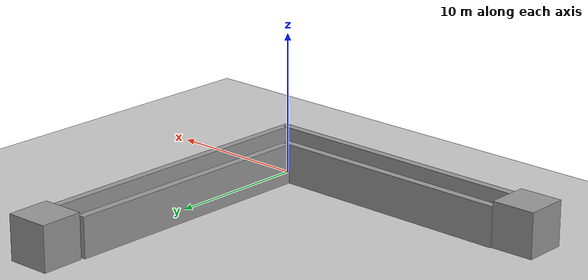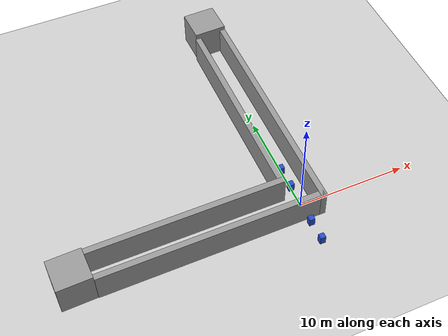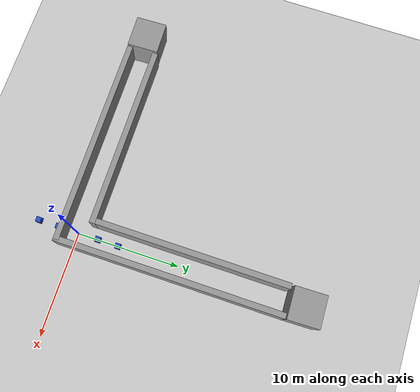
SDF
<sdf version="1.6">
 <world name="default">
  <include><uri>model://sun</uri></include>
  <include><uri>model://ground_plane</uri></include>
  <physics name="default_physics" default="0" type="ode">
   <max_step_size>0.01</max_step_size>
   <real_time_factor>1</real_time_factor>
   <real_time_update_rate>100</real_time_update_rate>
  </physics>
  <model name="my_obstacle_0">
   <pose>0 2 0.2 0 -0 0</pose>
   <link name="s_link">
    <inertial>
     <mass>1</mass>
     <inertia><ixx>1</ixx><ixy>0</ixy><ixz>0</ixz><iyy>1</iyy><iyz>0</iyz><izz>1</izz></inertia>
    </inertial>
    <collision name="collision"><geometry><box><size>.5 .5 1.2</size></box></geometry></collision>
    <visual name="visual">
     <geometry><box><size>.5 .5 1.2</size></box></geometry>
     <material>
      <script><name>Gazebo/Blue</name><uri>file://media/materials/scripts/gazebo.material</uri></script>
     </material>
    </visual>
    <kinematic>1</kinematic>
   </link>
  </model>
  <model name="my_obstacle_1">
   <pose>0 4 0.2 0 -0 0</pose>
   <link name="s_link">
    <inertial>
     <mass>1</mass>
     <inertia><ixx>1</ixx><ixy>0</ixy><ixz>0</ixz><iyy>1</iyy><iyz>0</iyz><izz>1</izz></inertia>
    </inertial>
    <collision name="collision"><geometry><box><size>.5 .5 1.2</size></box></geometry></collision>
    <visual name="visual">
     <geometry><box><size>.5 .5 1.2</size></box></geometry>
     <material>
      <script><name>Gazebo/Blue</name><uri>file://media/materials/scripts/gazebo.material</uri></script>
     </material>
    </visual>
    <kinematic>1</kinematic>
   </link>
  </model>
  <model name="my_obstacle_2">
   <pose>0 -2 0.2 0 -0 0</pose>
   <link name="s_link">
    <inertial>
     <mass>1</mass>
     <inertia><ixx>1</ixx><ixy>0</ixy><ixz>0</ixz><iyy>1</iyy><iyz>0</iyz><izz>1</izz></inertia>
    </inertial>
    <collision name="collision"><geometry><box><size>.5 .5 1.2</size></box></geometry></collision>
    <visual name="visual">
     <geometry><box><size>.5 .5 1.2</size></box></geometry>
     <material>
      <script><name>Gazebo/Blue</name><uri>file://media/materials/scripts/gazebo.material</uri></script>
     </material>
    </visual>
    <kinematic>1</kinematic>
   </link>
  </model>
  <model name="my_obstacle_3">
   <pose>0 -4 0.2 0 -0 0</pose>
   <link name="s_link">
    <inertial>
     <mass>1</mass>
     <inertia><ixx>1</ixx><ixy>0</ixy><ixz>0</ixz><iyy>1</iyy><iyz>0</iyz><izz>1</izz></inertia>
    </inertial>
    <collision name="collision"><geometry><box><size>.5 .5 1.2</size></box></geometry></collision>
    <visual name="visual">
     <geometry><box><size>.5 .5 1.2</size></box></geometry>
     <material>
      <script><name>Gazebo/Blue</name><uri>file://media/materials/scripts/gazebo.material</uri></script>
     </material>
    </visual>
    <kinematic>1</kinematic>
   </link>
  </model>
  <model name="grey_wall_2">
   <link name="link">
    <pose>-3.36101 1.45596 1.4 0 -0 0</pose>
    <inertial>
     <inertia><ixx>0</ixx><ixy>0</ixy><ixz>0</ixz><iyy>0</iyy><iyz>0</iyz><izz>0</izz></inertia>
     <mass>0</mass>
    </inertial>
    <visual name="visual">
     <cast_shadows>0</cast_shadows>
     <geometry><box><size>18.6506 0.563339 2.8</size></box></geometry>
     <material>
      <script>
       <uri>model://grey_wall/materials/scripts</uri>
       <uri>model://grey_wall/materials/textures</uri>
       <name>vrc/grey_wall</name>
      </script>
      <shader type="pixel"/>
      <ambient>1 1 1 1</ambient>
      <diffuse>1 1 1 1</diffuse>
      <specular>0 0 0 1</specular>
      <emissive>0 0 0 1</emissive>
     </material>
    </visual>
    <collision name="collision">
     <geometry><box><size>18.6506 0.563339 2.8</size></box></geometry>
     <surface>
      <friction>
       <ode><mu>1</mu><mu2>1</mu2><fdir1>0 0 0</fdir1><slip1>0</slip1><slip2>0</slip2></ode>
       <torsional>
        <coefficient>1</coefficient>
        <patch_radius>0</patch_radius>
        <surface_radius>0</surface_radius>
        <use_patch_radius>1</use_patch_radius>
        <ode><slip>0</slip></ode>
       </torsional>
      </friction>
      <bounce><restitution_coefficient>0</restitution_coefficient><threshold>1e+06</threshold></bounce>
      <contact>
       <collide_without_contact>0</collide_without_contact>
       <collide_without_contact_bitmask>1</collide_without_contact_bitmask>
       <collide_bitmask>1</collide_bitmask>
       <ode>
        <soft_cfm>0</soft_cfm>
        <soft_erp>0.2</soft_erp>
        <kp>1e+13</kp>
        <kd>1</kd>
        <max_vel>0.01</max_vel>
        <min_depth>0</min_depth>
       </ode>
       <bullet>
        <split_impulse>1</split_impulse>
        <split_impulse_penetration_threshold>-0.01</split_impulse_penetration_threshold>
        <soft_cfm>0</soft_cfm>
        <soft_erp>0.2</soft_erp>
        <kp>1e+13</kp>
        <kd>1</kd>
       </bullet>
      </contact>
     </surface>
    </collision>
   </link>
   <static>1</static>
   <pose>-2.77782 7.57224 0 0 0 -1.57152</pose>
  </model>
  <model name="grey_wall_3">
   <link name="link">
    <pose>-2.87522 -0.556395 1.4 0 -0 0</pose>
    <inertial>
     <inertia><ixx>0</ixx><ixy>0</ixy><ixz>0</ixz><iyy>0</iyy><iyz>0</iyz><izz>0</izz></inertia>
     <mass>0</mass>
    </inertial>
    <visual name="visual">
     <cast_shadows>0</cast_shadows>
     <geometry><box><size>17.8897 0.563339 2.8</size></box></geometry>
     <material>
      <script>
       <uri>model://grey_wall/materials/scripts</uri>
       <uri>model://grey_wall/materials/textures</uri>
       <name>vrc/grey_wall</name>
      </script>
      <shader type="pixel"/>
      <ambient>1 1 1 1</ambient>
      <diffuse>1 1 1 1</diffuse>
      <specular>0 0 0 1</specular>
      <emissive>0 0 0 1</emissive>
     </material>
    </visual>
    <collision name="collision">
     <geometry><box><size>17.8897 0.563339 2.8</size></box></geometry>
     <surface>
      <friction>
       <ode><mu>1</mu><mu2>1</mu2><fdir1>0 0 0</fdir1><slip1>0</slip1><slip2>0</slip2></ode>
       <torsional>
        <coefficient>1</coefficient>
        <patch_radius>0</patch_radius>
        <surface_radius>0</surface_radius>
        <use_patch_radius>1</use_patch_radius>
        <ode><slip>0</slip></ode>
       </torsional>
      </friction>
      <bounce><restitution_coefficient>0</restitution_coefficient><threshold>1e+06</threshold></bounce>
      <contact>
       <collide_without_contact>0</collide_without_contact>
       <collide_without_contact_bitmask>1</collide_without_contact_bitmask>
       <collide_bitmask>1</collide_bitmask>
       <ode>
        <soft_cfm>0</soft_cfm>
        <soft_erp>0.2</soft_erp>
        <kp>1e+13</kp>
        <kd>1</kd>
        <max_vel>0.01</max_vel>
        <min_depth>0</min_depth>
       </ode>
       <bullet>
        <split_impulse>1</split_impulse>
        <split_impulse_penetration_threshold>-0.01</split_impulse_penetration_threshold>
        <soft_cfm>0</soft_cfm>
        <soft_erp>0.2</soft_erp>
        <kp>1e+13</kp>
        <kd>1</kd>
       </bullet>
      </contact>
     </surface>
    </collision>
   </link>
   <static>1</static>
   <pose>-7.10685 1.88813 0 0 -0 0</pose>
  </model>
  <gravity>0 0 -9.8</gravity>
  <magnetic_field>6e-06 2.3e-05 -4.2e-05</magnetic_field>
  <atmosphere type="adiabatic"/>
  <scene><ambient>0.4 0.4 0.4 1</ambient><background>0.7 0.7 0.7 1</background><shadows>1</shadows></scene>
  <spherical_coordinates>
   <surface_model>EARTH_WGS84</surface_model>
   <latitude_deg>0</latitude_deg>
   <longitude_deg>0</longitude_deg>
   <elevation>0</elevation>
   <heading_deg>0</heading_deg>
  </spherical_coordinates>
  <model name="corner_box_0">
   <link name="link_0">
    <pose>0.13055 -1.5933 -1.22723 0 -0 0</pose>
    <inertial>
     <mass>29.1278</mass>
     <inertia><ixx>46.0778</ixx><ixy>0</ixy><ixz>0</ixz><iyy>46.8576</iyy><iyz>0</iyz><izz>45.0127</izz></inertia>
    </inertial>
    <visual name="visual">
     <geometry><box><size>3.07127 3.01852 3.1419</size></box></geometry>
     <material>
      <lighting>1</lighting>
      <script><uri>file://media/materials/scripts/gazebo.material</uri><name>Gazebo/Grey</name></script>
      <shader type="pixel"><normal_map>__default__</normal_map></shader>
      <ambient>0.3 0.3 0.3 1</ambient>
      <diffuse>0.7 0.7 0.7 1</diffuse>
      <specular>0.01 0.01 0.01 1</specular>
      <emissive>0 0 0 1</emissive>
     </material>
    </visual>
    <collision name="collision">
     <geometry><box><size>3.07127 3.01852 3.1419</size></box></geometry>
     <surface>
      <friction>
       <ode><mu>1</mu><mu2>1</mu2><fdir1>0 0 0</fdir1><slip1>0</slip1><slip2>0</slip2></ode>
       <torsional>
        <coefficient>1</coefficient>
        <patch_radius>0</patch_radius>
        <surface_radius>0</surface_radius>
        <use_patch_radius>1</use_patch_radius>
        <ode><slip>0</slip></ode>
       </torsional>
      </friction>
      <bounce><restitution_coefficient>0</restitution_coefficient><threshold>1e+06</threshold></bounce>
      <contact>
       <collide_without_contact>0</collide_without_contact>
       <collide_without_contact_bitmask>1</collide_without_contact_bitmask>
       <collide_bitmask>1</collide_bitmask>
       <ode>
        <soft_cfm>0</soft_cfm>
        <soft_erp>0.2</soft_erp>
        <kp>1e+13</kp>
        <kd>1</kd>
        <max_vel>0.01</max_vel>
        <min_depth>0</min_depth>
       </ode>
       <bullet>
        <split_impulse>1</split_impulse>
        <split_impulse_penetration_threshold>-0.01</split_impulse_penetration_threshold>
        <soft_cfm>0</soft_cfm>
        <soft_erp>0.2</soft_erp>
        <kp>1e+13</kp>
        <kd>1</kd>
       </bullet>
      </contact>
     </surface>
    </collision>
   </link>
   <static>0</static>
   <pose>-20.6054 1.56649 2.79818 0 -0 0.022404</pose>
  </model>
  <model name="grey_wall_0">
   <link name="link">
    <pose>-3.56894 0.844772 1.4 0 -0 0</pose>
    <inertial>
     <inertia><ixx>0</ixx><ixy>0</ixy><ixz>0</ixz><iyy>0</iyy><iyz>0</iyz><izz>0</izz></inertia>
     <mass>0</mass>
    </inertial>
    <visual name="visual">
     <cast_shadows>0</cast_shadows>
     <geometry><box><size>20.2774 0.549826 2.8</size></box></geometry>
     <material>
      <script>
       <uri>model://grey_wall/materials/scripts</uri>
       <uri>model://grey_wall/materials/textures</uri>
       <name>vrc/grey_wall</name>
      </script>
      <shader type="pixel"/>
      <ambient>1 1 1 1</ambient>
      <diffuse>1 1 1 1</diffuse>
      <specular>0 0 0 1</specular>
      <emissive>0 0 0 1</emissive>
     </material>
    </visual>
    <collision name="collision">
     <geometry><box><size>20.2774 0.549826 2.8</size></box></geometry>
     <surface>
      <friction>
       <ode><mu>1</mu><mu2>1</mu2><fdir1>0 0 0</fdir1><slip1>0</slip1><slip2>0</slip2></ode>
       <torsional>
        <coefficient>1</coefficient>
        <patch_radius>0</patch_radius>
        <surface_radius>0</surface_radius>
        <use_patch_radius>1</use_patch_radius>
        <ode><slip>0</slip></ode>
       </torsional>
      </friction>
      <bounce><restitution_coefficient>0</restitution_coefficient><threshold>1e+06</threshold></bounce>
      <contact>
       <collide_without_contact>0</collide_without_contact>
       <collide_without_contact_bitmask>1</collide_without_contact_bitmask>
       <collide_bitmask>1</collide_bitmask>
       <ode>
        <soft_cfm>0</soft_cfm>
        <soft_erp>0.2</soft_erp>
        <kp>1e+13</kp>
        <kd>1</kd>
        <max_vel>0.01</max_vel>
        <min_depth>0</min_depth>
       </ode>
       <bullet>
        <split_impulse>1</split_impulse>
        <split_impulse_penetration_threshold>-0.01</split_impulse_penetration_threshold>
        <soft_cfm>0</soft_cfm>
        <soft_erp>0.2</soft_erp>
        <kp>1e+13</kp>
        <kd>1</kd>
       </bullet>
      </contact>
     </surface>
    </collision>
   </link>
   <static>1</static>
   <pose>-5.15409 -2.10953 0 0 -0 0</pose>
  </model>
  <model name="corner_box_1">
   <link name="link_0">
    <pose>0.13055 -1.5933 -1.22723 0 -0 0</pose>
    <inertial>
     <mass>29.1278</mass>
     <inertia><ixx>46.0778</ixx><ixy>0</ixy><ixz>0</ixz><iyy>46.8576</iyy><iyz>0</iyz><izz>45.0127</izz></inertia>
    </inertial>
    <visual name="visual">
     <geometry><box><size>3.07127 3.01852 3.1419</size></box></geometry>
     <material>
      <lighting>1</lighting>
      <script><uri>file://media/materials/scripts/gazebo.material</uri><name>Gazebo/Grey</name></script>
      <shader type="pixel"><normal_map>__default__</normal_map></shader>
      <ambient>0.3 0.3 0.3 1</ambient>
      <diffuse>0.7 0.7 0.7 1</diffuse>
      <specular>0.01 0.01 0.01 1</specular>
      <emissive>0 0 0 1</emissive>
     </material>
    </visual>
    <collision name="collision">
     <geometry><box><size>3.07127 3.01852 3.1419</size></box></geometry>
     <surface>
      <friction>
       <ode><mu>1</mu><mu2>1</mu2><fdir1>0 0 0</fdir1><slip1>0</slip1><slip2>0</slip2></ode>
       <torsional>
        <coefficient>1</coefficient>
        <patch_radius>0</patch_radius>
        <surface_radius>0</surface_radius>
        <use_patch_radius>1</use_patch_radius>
        <ode><slip>0</slip></ode>
       </torsional>
      </friction>
      <bounce><restitution_coefficient>0</restitution_coefficient><threshold>1e+06</threshold></bounce>
      <contact>
       <collide_without_contact>0</collide_without_contact>
       <collide_without_contact_bitmask>1</collide_without_contact_bitmask>
       <collide_bitmask>1</collide_bitmask>
       <ode>
        <soft_cfm>0</soft_cfm>
        <soft_erp>0.2</soft_erp>
        <kp>1e+13</kp>
        <kd>1</kd>
        <max_vel>0.01</max_vel>
        <min_depth>0</min_depth>
       </ode>
       <bullet>
        <split_impulse>1</split_impulse>
        <split_impulse_penetration_threshold>-0.01</split_impulse_penetration_threshold>
        <soft_cfm>0</soft_cfm>
        <soft_erp>0.2</soft_erp>
        <kp>1e+13</kp>
        <kd>1</kd>
       </bullet>
      </contact>
     </surface>
    </collision>
   </link>
   <static>0</static>
   <pose>-0.130531 23.5855 2.79818 0 -0 0.022404</pose>
  </model>
  <model name="grey_wall_1">
   <link name="link">
    <pose>-5.97254 -1.3116 1.4 0 -0 0</pose>
    <inertial>
     <inertia><ixx>0</ixx><ixy>0</ixy><ixz>0</ixz><iyy>0</iyy><iyz>0</iyz><izz>0</izz></inertia>
     <mass>0</mass>
    </inertial>
    <visual name="visual">
     <cast_shadows>0</cast_shadows>
     <geometry><box><size>22.0133 0.549826 2.8</size></box></geometry>
     <material>
      <script>
       <uri>model://grey_wall/materials/scripts</uri>
       <uri>model://grey_wall/materials/textures</uri>
       <name>vrc/grey_wall</name>
      </script>
      <shader type="pixel"/>
      <ambient>1 1 1 1</ambient>
      <diffuse>1 1 1 1</diffuse>
      <specular>0 0 0 1</specular>
      <emissive>0 0 0 1</emissive>
     </material>
    </visual>
    <collision name="collision">
     <geometry><box><size>22.0133 0.549826 2.8</size></box></geometry>
     <surface>
      <friction>
       <ode><mu>1</mu><mu2>1</mu2><fdir1>0 0 0</fdir1><slip1>0</slip1><slip2>0</slip2></ode>
       <torsional>
        <coefficient>1</coefficient>
        <patch_radius>0</patch_radius>
        <surface_radius>0</surface_radius>
        <use_patch_radius>1</use_patch_radius>
        <ode><slip>0</slip></ode>
       </torsional>
      </friction>
      <bounce><restitution_coefficient>0</restitution_coefficient><threshold>1e+06</threshold></bounce>
      <contact>
       <collide_without_contact>0</collide_without_contact>
       <collide_without_contact_bitmask>1</collide_without_contact_bitmask>
       <collide_bitmask>1</collide_bitmask>
       <ode>
        <soft_cfm>0</soft_cfm>
        <soft_erp>0.2</soft_erp>
        <kp>1e+13</kp>
        <kd>1</kd>
        <max_vel>0.01</max_vel>
        <min_depth>0</min_depth>
       </ode>
       <bullet>
        <split_impulse>1</split_impulse>
        <split_impulse_penetration_threshold>-0.01</split_impulse_penetration_threshold>
        <soft_cfm>0</soft_cfm>
        <soft_erp>0.2</soft_erp>
        <kp>1e+13</kp>
        <kd>1</kd>
       </bullet>
      </contact>
     </surface>
    </collision>
   </link>
   <static>1</static>
   <pose>2.63402 3.49222 0 0 0 -1.57099</pose>
  </model>
 </world>
</sdf>
